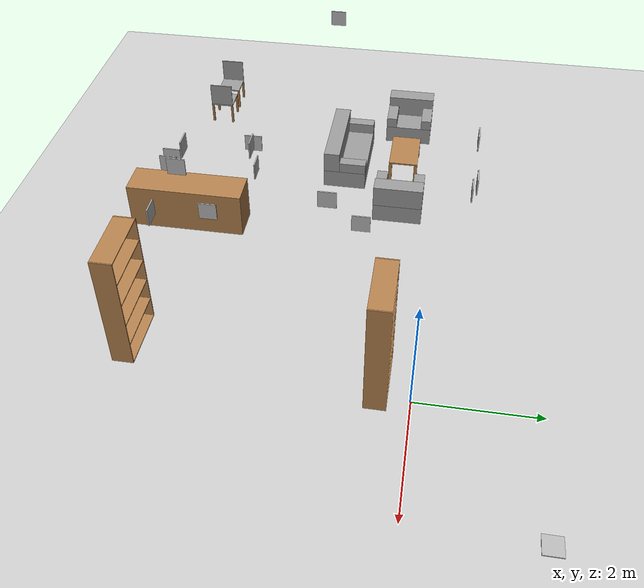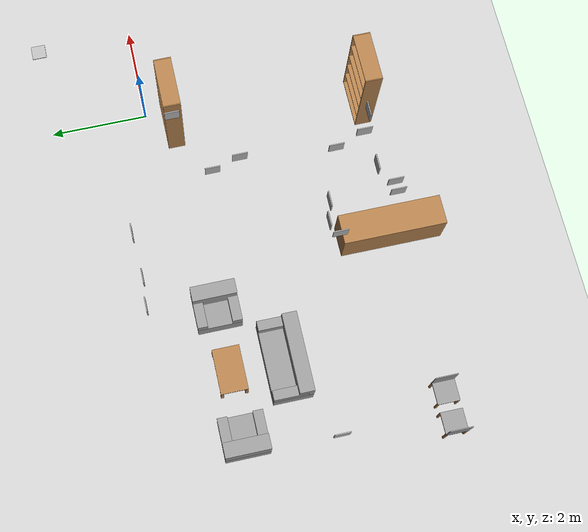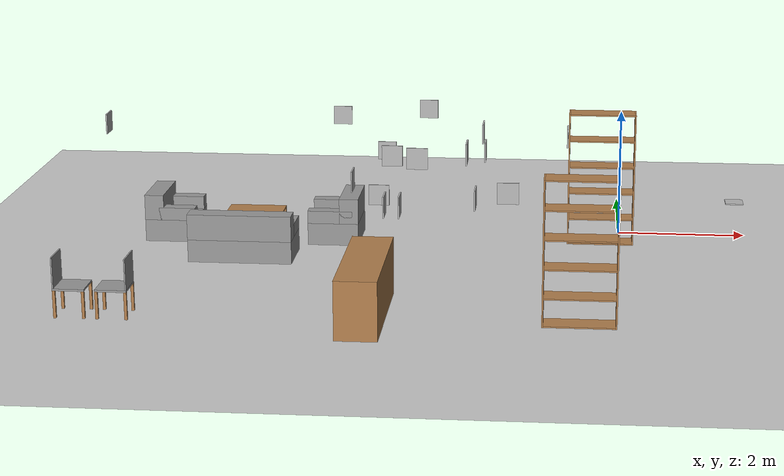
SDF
<sdf version="1.4">
 <world name="GrannyAnnie">
  <model name="ground_plane">
   <static>1</static>
   <link name="link">
    <collision name="collision">
     <geometry><plane><normal>0 0 1</normal><size>100 100</size></plane></geometry>
     <surface><friction><ode><mu>100</mu><mu2>50</mu2></ode></friction></surface>
    </collision>
    <visual name="visual">
     <cast_shadows>0</cast_shadows>
     <geometry><plane><normal>0 0 1</normal><size>100 100</size></plane></geometry>
     <material>
      <script><uri>file://media/materials/scripts/gazebo.material</uri><name>Gazebo/Grey</name></script>
     </material>
    </visual>
    <velocity_decay><linear>0</linear><angular>0</angular></velocity_decay>
   </link>
  </model>
  <model name="tag_0">
   <pose>-3.817000 0.700000 1.120000 1.5708 -1.5708 0</pose>
   <static>true</static>
   <link name="link">
    <collision name="collision">
     <geometry><box><size>0.300000 0.3000000 0.020000</size></box></geometry>
    </collision>
    <visual name="visual">
     <geometry><box><size>0.300000 0.3000000 0.020000</size></box></geometry>
     <material>
      <script><uri>file://tags_material/scripts/tags.material</uri><name>Tag36_11_00000</name></script>
     </material>
    </visual>
   </link>
   <static>0</static>
  </model>
  <model name="tag_2">
   <pose>-3.304000 -4.474000 1.650000 0 -1.5708 0</pose>
   <static>true</static>
   <link name="link">
    <collision name="collision">
     <geometry><box><size>0.300000 0.3000000 0.020000</size></box></geometry>
    </collision>
    <visual name="visual">
     <geometry><box><size>0.300000 0.3000000 0.020000</size></box></geometry>
     <material>
      <script><uri>file://tags_material/scripts/tags.material</uri><name>Tag36_11_00002</name></script>
     </material>
    </visual>
   </link>
   <static>0</static>
  </model>
  <model name="tag_3">
   <pose>-2.103000 -1.589000 2.006000 0 -1.5708 0</pose>
   <static>true</static>
   <link name="link">
    <collision name="collision">
     <geometry><box><size>0.300000 0.3000000 0.020000</size></box></geometry>
    </collision>
    <visual name="visual">
     <geometry><box><size>0.300000 0.3000000 0.020000</size></box></geometry>
     <material>
      <script><uri>file://tags_material/scripts/tags.material</uri><name>Tag36_11_00003</name></script>
     </material>
    </visual>
   </link>
   <static>0</static>
  </model>
  <model name="tag_4">
   <pose>-4.549000 0.727000 1.700000 1.5708 -1.5708 0</pose>
   <static>true</static>
   <link name="link">
    <collision name="collision">
     <geometry><box><size>0.300000 0.3000000 0.020000</size></box></geometry>
    </collision>
    <visual name="visual">
     <geometry><box><size>0.300000 0.3000000 0.020000</size></box></geometry>
     <material>
      <script><uri>file://tags_material/scripts/tags.material</uri><name>Tag36_11_00004</name></script>
     </material>
    </visual>
   </link>
   <static>0</static>
  </model>
  <model name="tag_5">
   <pose>-0.839 -0.497 1.700000 0 -1.5708 0</pose>
   <static>true</static>
   <link name="link">
    <collision name="collision">
     <geometry><box><size>0.300000 0.3000000 0.020000</size></box></geometry>
    </collision>
    <visual name="visual">
     <geometry><box><size>0.300000 0.3000000 0.020000</size></box></geometry>
     <material>
      <script><uri>file://tags_material/scripts/tags.material</uri><name>Tag36_11_00005</name></script>
     </material>
    </visual>
   </link>
   <static>0</static>
  </model>
  <model name="tag_6">
   <pose>-3.535000 -3.062500 1.400000 -1.5708 -1.5708 0</pose>
   <static>true</static>
   <link name="link">
    <collision name="collision">
     <geometry><box><size>0.300000 0.3000000 0.020000</size></box></geometry>
    </collision>
    <visual name="visual">
     <geometry><box><size>0.300000 0.3000000 0.020000</size></box></geometry>
     <material>
      <script><uri>file://tags_material/scripts/tags.material</uri><name>Tag36_11_00006</name></script>
     </material>
    </visual>
   </link>
   <static>0</static>
  </model>
  <model name="tag_7">
   <pose>-2.101000 -1.051000 1.5870000 0 -1.5708 0</pose>
   <static>true</static>
   <link name="link">
    <collision name="collision">
     <geometry><box><size>0.300000 0.3000000 0.020000</size></box></geometry>
    </collision>
    <visual name="visual">
     <geometry><box><size>0.300000 0.3000000 0.020000</size></box></geometry>
     <material>
      <script><uri>file://tags_material/scripts/tags.material</uri><name>Tag36_11_00007</name></script>
     </material>
    </visual>
   </link>
   <static>0</static>
  </model>
  <model name="tag_10">
   <pose>-1.614000 -4.29500 1.800000 1.5708 -1.5708 0</pose>
   <static>true</static>
   <link name="link">
    <collision name="collision">
     <geometry><box><size>0.300000 0.3000000 0.020000</size></box></geometry>
    </collision>
    <visual name="visual">
     <geometry><box><size>0.300000 0.3000000 0.020000</size></box></geometry>
     <material>
      <script><uri>file://tags_material/scripts/tags.material</uri><name>Tag36_11_00010</name></script>
     </material>
    </visual>
   </link>
   <static>0</static>
  </model>
  <model name="tag_11">
   <pose>-3.338000 -3.071000 1.990000 -1.5708 -1.5708 0</pose>
   <static>true</static>
   <link name="link">
    <collision name="collision">
     <geometry><box><size>0.300000 0.3000000 0.020000</size></box></geometry>
    </collision>
    <visual name="visual">
     <geometry><box><size>0.300000 0.3000000 0.020000</size></box></geometry>
     <material>
      <script><uri>file://tags_material/scripts/tags.material</uri><name>Tag36_11_00011</name></script>
     </material>
    </visual>
   </link>
   <static>0</static>
  </model>
  <model name="tag_12">
   <pose>-3.128000 0.720000 1.830000 1.5708 -1.5708 0</pose>
   <static>true</static>
   <link name="link">
    <collision name="collision">
     <geometry><box><size>0.300000 0.3000000 0.020000</size></box></geometry>
    </collision>
    <visual name="visual">
     <geometry><box><size>0.300000 0.3000000 0.020000</size></box></geometry>
     <material>
      <script><uri>file://tags_material/scripts/tags.material</uri><name>Tag36_11_00012</name></script>
     </material>
    </visual>
   </link>
   <static>0</static>
  </model>
  <model name="tag_13">
   <pose>-2.110000 -3.543000 1.510000 0 -1.5708 0</pose>
   <static>true</static>
   <link name="link">
    <collision name="collision">
     <geometry><box><size>0.0200000 0.300000 0.3000000</size></box></geometry>
    </collision>
    <visual name="visual">
     <geometry><box><size>0.300000 0.3000000 0.020000</size></box></geometry>
     <material>
      <script><uri>file://tags_material/scripts/tags.material</uri><name>Tag36_11_00013</name></script>
     </material>
    </visual>
   </link>
   <static>0</static>
  </model>
  <model name="tag_14">
   <pose>-2.88400 -4.091000 2.215000 -1.5708 -1.5708 0</pose>
   <static>true</static>
   <link name="link">
    <collision name="collision">
     <geometry><box><size>0.3000000 0.020000 0.3000000</size></box></geometry>
    </collision>
    <visual name="visual">
     <geometry><box><size>0.300000 0.3000000 0.020000</size></box></geometry>
     <material>
      <script><uri>file://tags_material/scripts/tags.material</uri><name>Tag36_11_00014</name></script>
     </material>
    </visual>
   </link>
   <static>0</static>
  </model>
  <model name="tag_15">
   <pose>-7.694000 -2.223000 2.208000 3.1416 -1.5708 0</pose>
   <static>true</static>
   <link name="link">
    <collision name="collision">
     <geometry><box><size>0.0200000 0.300000 0.3000000</size></box></geometry>
    </collision>
    <visual name="visual">
     <geometry><box><size>0.300000 0.3000000 0.020000</size></box></geometry>
     <material>
      <script><uri>file://tags_material/scripts/tags.material</uri><name>Tag36_11_00015</name></script>
     </material>
    </visual>
   </link>
   <static>0</static>
  </model>
  <model name="tag_16">
   <pose>-3.094000 -4.474000 1.650000 3.1416 -1.5708 0</pose>
   <static>true</static>
   <link name="link">
    <collision name="collision">
     <geometry><box><size>0.300000 0.3000000 0.020000</size></box></geometry>
    </collision>
    <visual name="visual">
     <geometry><box><size>0.300000 0.3000000 0.020000</size></box></geometry>
     <material>
      <script><uri>file://tags_material/scripts/tags.material</uri><name>Tag36_11_00016</name></script>
     </material>
    </visual>
   </link>
   <static>0</static>
  </model>
  <model name="tag_17">
   <pose>-3.902000 -3.178000 1.650000 0 -1.5708 0</pose>
   <static>true</static>
   <link name="link">
    <collision name="collision">
     <geometry><box><size>0.300000 0.3000000 0.020000</size></box></geometry>
    </collision>
    <visual name="visual">
     <geometry><box><size>0.300000 0.3000000 0.020000</size></box></geometry>
     <material>
      <script><uri>file://tags_material/scripts/tags.material</uri><name>Tag36_11_00017</name></script>
     </material>
    </visual>
   </link>
   <static>0</static>
  </model>
  <model name="tag_21">
   <pose>-2.201 -4.003 2.293 0 -1.5708 0</pose>
   <static>true</static>
   <link name="link">
    <collision name="collision">
     <geometry><box><size>0.300000 0.3000000 0.020000</size></box></geometry>
    </collision>
    <visual name="visual">
     <geometry><box><size>0.300000 0.3000000 0.020000</size></box></geometry>
     <material>
      <script><uri>file://tags_material/scripts/tags.material</uri><name>Tag36_11_00021</name></script>
     </material>
    </visual>
   </link>
   <static>0</static>
  </model>
  <model name="tag_23">
   <pose>2 2 0 0 0 0</pose>
   <static>true</static>
   <link name="link">
    <collision name="collision">
     <geometry><box><size>0.300000 0.3000000 0.020000</size></box></geometry>
    </collision>
    <visual name="visual">
     <geometry><box><size>0.300000 0.3000000 0.020000</size></box></geometry>
     <material>
      <script><uri>file://tags_material/scripts/tags.material</uri><name>Tag36_11_00023</name></script>
     </material>
    </visual>
   </link>
   <static>0</static>
  </model>
  <model name="tag_24">
   <pose>2 2 0 0 0 0</pose>
   <static>true</static>
   <link name="link">
    <collision name="collision">
     <geometry><box><size>0.300000 0.3000000 0.020000</size></box></geometry>
    </collision>
    <visual name="visual">
     <geometry><box><size>0.300000 0.3000000 0.020000</size></box></geometry>
     <material>
      <script><uri>file://tags_material/scripts/tags.material</uri><name>Tag36_11_00024</name></script>
     </material>
    </visual>
   </link>
   <static>0</static>
  </model>
  <model name="tag_25">
   <pose>2 2 0 0 0 0</pose>
   <static>true</static>
   <link name="link">
    <collision name="collision">
     <geometry><box><size>0.300000 0.3000000 0.020000</size></box></geometry>
    </collision>
    <visual name="visual">
     <geometry><box><size>0.300000 0.3000000 0.020000</size></box></geometry>
     <material>
      <script><uri>file://tags_material/scripts/tags.material</uri><name>Tag36_11_00025</name></script>
     </material>
    </visual>
   </link>
   <static>0</static>
  </model>
  <model name="tag_26">
   <pose>2 2 0 0 0 0</pose>
   <static>true</static>
   <link name="link">
    <collision name="collision">
     <geometry><box><size>0.300000 0.3000000 0.020000</size></box></geometry>
    </collision>
    <visual name="visual">
     <geometry><box><size>0.300000 0.3000000 0.020000</size></box></geometry>
     <material>
      <script><uri>file://tags_material/scripts/tags.material</uri><name>Tag36_11_00026</name></script>
     </material>
    </visual>
   </link>
   <static>0</static>
  </model>
  <model name="tag_27">
   <pose>2 2 0 0 0 0</pose>
   <static>true</static>
   <link name="link">
    <collision name="collision">
     <geometry><box><size>0.300000 0.3000000 0.020000</size></box></geometry>
    </collision>
    <visual name="visual">
     <geometry><box><size>0.300000 0.3000000 0.020000</size></box></geometry>
     <material>
      <script><uri>file://tags_material/scripts/tags.material</uri><name>Tag36_11_00027</name></script>
     </material>
    </visual>
   </link>
   <static>0</static>
  </model>
  <model name="tag_28">
   <pose>2 2 0 0 0 0</pose>
   <static>true</static>
   <link name="link">
    <collision name="collision">
     <geometry><box><size>0.300000 0.3000000 0.020000</size></box></geometry>
    </collision>
    <visual name="visual">
     <geometry><box><size>0.300000 0.3000000 0.020000</size></box></geometry>
     <material>
      <script><uri>file://tags_material/scripts/tags.material</uri><name>Tag36_11_00028</name></script>
     </material>
    </visual>
   </link>
   <static>0</static>
  </model>
  <model name="tag_29">
   <pose>2 2 0 0 0 0</pose>
   <static>true</static>
   <link name="link">
    <collision name="collision">
     <geometry><box><size>0.300000 0.3000000 0.020000</size></box></geometry>
    </collision>
    <visual name="visual">
     <geometry><box><size>0.300000 0.3000000 0.020000</size></box></geometry>
     <material>
      <script><uri>file://tags_material/scripts/tags.material</uri><name>Tag36_11_00029</name></script>
     </material>
    </visual>
   </link>
   <static>0</static>
  </model>
  <model name="tag_30">
   <pose>2 2 0 0 0 0</pose>
   <static>true</static>
   <link name="link">
    <collision name="collision">
     <geometry><box><size>0.300000 0.3000000 0.020000</size></box></geometry>
    </collision>
    <visual name="visual">
     <geometry><box><size>0.300000 0.3000000 0.020000</size></box></geometry>
     <material>
      <script><uri>file://tags_material/scripts/tags.material</uri><name>Tag36_11_00030</name></script>
     </material>
    </visual>
   </link>
   <static>0</static>
  </model>
  <model name="tag_31">
   <pose>2 2 0 0 0 0</pose>
   <static>true</static>
   <link name="link">
    <collision name="collision">
     <geometry><box><size>0.300000 0.3000000 0.020000</size></box></geometry>
    </collision>
    <visual name="visual">
     <geometry><box><size>0.300000 0.3000000 0.020000</size></box></geometry>
     <material>
      <script><uri>file://tags_material/scripts/tags.material</uri><name>Tag36_11_00031</name></script>
     </material>
    </visual>
   </link>
   <static>0</static>
  </model>
  <model name="silla_2">
   <link name="silla_link">
    <inertial>
     <pose>0.0215 0 0.353 0 -0 0</pose>
     <mass>2</mass>
     <inertia>
      <ixx>0.674432</ixx>
      <ixy>0</ixy>
      <ixz>-0.012986</ixz>
      <iyy>0.682753</iyy>
      <iyz>0</iyz>
      <izz>0.675561</izz>
     </inertia>
    </inertial>
    <collision name="silla_link_collision">
     <pose>0 0 0.415 0 -0 0</pose>
     <geometry><box><size>0.45 0.45 0.03</size></box></geometry>
     <surface><friction><ode><mu>1</mu><mu2>1</mu2></ode></friction></surface>
    </collision>
    <collision name="silla_link_collision_pata_1_link">
     <pose>0.205 0.205 0.2 0 -0 0</pose>
     <geometry><box><size>0.04 0.04 0.4</size></box></geometry>
     <surface><friction><ode><mu>1</mu><mu2>1</mu2></ode></friction></surface>
     <surface><friction><ode><mu>1</mu><mu2>1</mu2></ode></friction></surface>
    </collision>
    <collision name="silla_link_collision_pata_2_link">
     <pose>0.205 -0.205 0.2 0 -0 0</pose>
     <geometry><box><size>0.04 0.04 0.4</size></box></geometry>
     <surface><friction><ode><mu>1</mu><mu2>1</mu2></ode></friction></surface>
     <surface><friction><ode><mu>1</mu><mu2>1</mu2></ode></friction></surface>
    </collision>
    <collision name="silla_link_collision_pata_3_link">
     <pose>-0.205 -0.205 0.2 0 -0 0</pose>
     <geometry><box><size>0.04 0.04 0.4</size></box></geometry>
     <surface><friction><ode><mu>1</mu><mu2>1</mu2></ode></friction></surface>
     <surface><friction><ode><mu>1</mu><mu2>1</mu2></ode></friction></surface>
    </collision>
    <collision name="silla_link_collision_pata_4_link">
     <pose>-0.205 0.205 0.2 0 -0 0</pose>
     <geometry><box><size>0.04 0.04 0.4</size></box></geometry>
     <surface><friction><ode><mu>1</mu><mu2>1</mu2></ode></friction></surface>
     <surface><friction><ode><mu>1</mu><mu2>1</mu2></ode></friction></surface>
    </collision>
    <collision name="silla_link_collision_respaldo_link">
     <pose>0.215 0 0.655 0 -0 0</pose>
     <geometry><box><size>0.02 0.45 0.45</size></box></geometry>
     <surface><friction><ode><mu>1</mu><mu2>1</mu2></ode></friction></surface>
     <surface><friction><ode><mu>1</mu><mu2>1</mu2></ode></friction></surface>
    </collision>
    <visual name="silla_link_visual">
     <pose>0 0 0.415 0 -0 0</pose>
     <geometry><box><size>0.45 0.45 0.03</size></box></geometry>
     <material><script><name>Gazebo/Grey</name><uri>__default__</uri></script></material>
    </visual>
    <visual name="silla_link_visual_pata_1_link">
     <pose>0.205 0.205 0.2 0 -0 0</pose>
     <geometry><box><size>0.04 0.04 0.4</size></box></geometry>
     <material><script><name>Gazebo/Wood</name><uri>__default__</uri></script></material>
    </visual>
    <visual name="silla_link_visual_pata_2_link">
     <pose>0.205 -0.205 0.2 0 -0 0</pose>
     <geometry><box><size>0.04 0.04 0.4</size></box></geometry>
     <material><script><name>Gazebo/Wood</name><uri>__default__</uri></script></material>
    </visual>
    <visual name="silla_link_visual_pata_3_link">
     <pose>-0.205 -0.205 0.2 0 -0 0</pose>
     <geometry><box><size>0.04 0.04 0.4</size></box></geometry>
     <material><script><name>Gazebo/Wood</name><uri>__default__</uri></script></material>
    </visual>
    <visual name="silla_link_visual_pata_4_link">
     <pose>-0.205 0.205 0.2 0 -0 0</pose>
     <geometry><box><size>0.04 0.04 0.4</size></box></geometry>
     <material><script><name>Gazebo/Wood</name><uri>__default__</uri></script></material>
    </visual>
    <visual name="silla_link_visual_respaldo_link">
     <pose>0.215 0 0.655 0 -0 0</pose>
     <geometry><box><size>0.02 0.45 0.45</size></box></geometry>
     <material><script><name>Gazebo/Grey</name><uri>__default__</uri></script></material>
    </visual>
    <velocity_decay><linear>0</linear><angular>0</angular></velocity_decay>
    <velocity_decay><linear>0</linear><angular>0</angular></velocity_decay>
    <velocity_decay><linear>0</linear><angular>0</angular></velocity_decay>
    <velocity_decay><linear>0</linear><angular>0</angular></velocity_decay>
    <velocity_decay><linear>0</linear><angular>0</angular></velocity_decay>
    <velocity_decay><linear>0</linear><angular>0</angular></velocity_decay>
    <self_collide>1</self_collide>
   </link>
   <pose>-7.1 -4.6 0 0 -0 0</pose>
   <static>0</static>
  </model>
  <model name="silla_4">
   <link name="silla_link">
    <inertial>
     <pose>0.0215 0 0.353 0 -0 0</pose>
     <mass>2</mass>
     <inertia>
      <ixx>0.674432</ixx>
      <ixy>0</ixy>
      <ixz>-0.012986</ixz>
      <iyy>0.682753</iyy>
      <iyz>0</iyz>
      <izz>0.675561</izz>
     </inertia>
    </inertial>
    <collision name="silla_link_collision">
     <pose>0 0 0.415 0 -0 0</pose>
     <geometry><box><size>0.45 0.45 0.03</size></box></geometry>
     <surface><friction><ode><mu>1</mu><mu2>1</mu2></ode></friction></surface>
    </collision>
    <collision name="silla_link_collision_pata_1_link">
     <pose>0.205 0.205 0.2 0 -0 0</pose>
     <geometry><box><size>0.04 0.04 0.4</size></box></geometry>
     <surface><friction><ode><mu>1</mu><mu2>1</mu2></ode></friction></surface>
     <surface><friction><ode><mu>1</mu><mu2>1</mu2></ode></friction></surface>
    </collision>
    <collision name="silla_link_collision_pata_2_link">
     <pose>0.205 -0.205 0.2 0 -0 0</pose>
     <geometry><box><size>0.04 0.04 0.4</size></box></geometry>
     <surface><friction><ode><mu>1</mu><mu2>1</mu2></ode></friction></surface>
     <surface><friction><ode><mu>1</mu><mu2>1</mu2></ode></friction></surface>
    </collision>
    <collision name="silla_link_collision_pata_3_link">
     <pose>-0.205 -0.205 0.2 0 -0 0</pose>
     <geometry><box><size>0.04 0.04 0.4</size></box></geometry>
     <surface><friction><ode><mu>1</mu><mu2>1</mu2></ode></friction></surface>
     <surface><friction><ode><mu>1</mu><mu2>1</mu2></ode></friction></surface>
    </collision>
    <collision name="silla_link_collision_pata_4_link">
     <pose>-0.205 0.205 0.2 0 -0 0</pose>
     <geometry><box><size>0.04 0.04 0.4</size></box></geometry>
     <surface><friction><ode><mu>1</mu><mu2>1</mu2></ode></friction></surface>
     <surface><friction><ode><mu>1</mu><mu2>1</mu2></ode></friction></surface>
    </collision>
    <collision name="silla_link_collision_respaldo_link">
     <pose>0.215 0 0.655 0 -0 0</pose>
     <geometry><box><size>0.02 0.45 0.45</size></box></geometry>
     <surface><friction><ode><mu>1</mu><mu2>1</mu2></ode></friction></surface>
     <surface><friction><ode><mu>1</mu><mu2>1</mu2></ode></friction></surface>
    </collision>
    <visual name="silla_link_visual">
     <pose>0 0 0.415 0 -0 0</pose>
     <geometry><box><size>0.45 0.45 0.03</size></box></geometry>
     <material><script><name>Gazebo/Grey</name><uri>__default__</uri></script></material>
    </visual>
    <visual name="silla_link_visual_pata_1_link">
     <pose>0.205 0.205 0.2 0 -0 0</pose>
     <geometry><box><size>0.04 0.04 0.4</size></box></geometry>
     <material><script><name>Gazebo/Wood</name><uri>__default__</uri></script></material>
    </visual>
    <visual name="silla_link_visual_pata_2_link">
     <pose>0.205 -0.205 0.2 0 -0 0</pose>
     <geometry><box><size>0.04 0.04 0.4</size></box></geometry>
     <material><script><name>Gazebo/Wood</name><uri>__default__</uri></script></material>
    </visual>
    <visual name="silla_link_visual_pata_3_link">
     <pose>-0.205 -0.205 0.2 0 -0 0</pose>
     <geometry><box><size>0.04 0.04 0.4</size></box></geometry>
     <material><script><name>Gazebo/Wood</name><uri>__default__</uri></script></material>
    </visual>
    <visual name="silla_link_visual_pata_4_link">
     <pose>-0.205 0.205 0.2 0 -0 0</pose>
     <geometry><box><size>0.04 0.04 0.4</size></box></geometry>
     <material><script><name>Gazebo/Wood</name><uri>__default__</uri></script></material>
    </visual>
    <visual name="silla_link_visual_respaldo_link">
     <pose>0.215 0 0.655 0 -0 0</pose>
     <geometry><box><size>0.02 0.45 0.45</size></box></geometry>
     <material><script><name>Gazebo/Grey</name><uri>__default__</uri></script></material>
    </visual>
    <velocity_decay><linear>0</linear><angular>0</angular></velocity_decay>
    <velocity_decay><linear>0</linear><angular>0</angular></velocity_decay>
    <velocity_decay><linear>0</linear><angular>0</angular></velocity_decay>
    <velocity_decay><linear>0</linear><angular>0</angular></velocity_decay>
    <velocity_decay><linear>0</linear><angular>0</angular></velocity_decay>
    <velocity_decay><linear>0</linear><angular>0</angular></velocity_decay>
    <self_collide>1</self_collide>
   </link>
   <pose>-7.7 -4.6 0 0 -0 3.14</pose>
   <static>0</static>
  </model>
  <model name="mesa_salon">
   <link name="mesa_link">
    <inertial>
     <pose>1.38778e-17 3.46945e-18 0.3075 0 -0 0</pose>
     <mass>4</mass>
     <inertia>
      <ixx>0.666275</ixx>
      <ixy>1.92593e-34</ixy>
      <ixz>1.70697e-17</ixz>
      <iyy>0.899025</iyy>
      <iyz>4.26742e-18</iyz>
      <izz>0.97285</izz>
     </inertia>
    </inertial>
    <collision name="mesa_link_collision">
     <pose>0 0 0.415 0 -0 0</pose>
     <geometry><box><size>0.9 0.55 0.03</size></box></geometry>
     <surface><friction><ode><mu>1</mu><mu2>1</mu2></ode></friction></surface>
    </collision>
    <collision name="mesa_link_collision_pata_1_link">
     <pose>0.42 0.245 0.2 0 -0 0</pose>
     <geometry><box><size>0.06 0.06 0.4</size></box></geometry>
     <surface><friction><ode><mu>1</mu><mu2>1</mu2></ode></friction></surface>
     <surface><friction><ode><mu>1</mu><mu2>1</mu2></ode></friction></surface>
    </collision>
    <collision name="mesa_link_collision_pata_2_link">
     <pose>0.42 -0.245 0.2 0 -0 0</pose>
     <geometry><box><size>0.06 0.06 0.4</size></box></geometry>
     <surface><friction><ode><mu>1</mu><mu2>1</mu2></ode></friction></surface>
     <surface><friction><ode><mu>1</mu><mu2>1</mu2></ode></friction></surface>
    </collision>
    <collision name="mesa_link_collision_pata_3_link">
     <pose>-0.42 -0.245 0.2 0 -0 0</pose>
     <geometry><box><size>0.06 0.06 0.4</size></box></geometry>
     <surface><friction><ode><mu>1</mu><mu2>1</mu2></ode></friction></surface>
     <surface><friction><ode><mu>1</mu><mu2>1</mu2></ode></friction></surface>
    </collision>
    <collision name="mesa_link_collision_pata_4_link">
     <pose>-0.42 0.245 0.2 0 -0 0</pose>
     <geometry><box><size>0.06 0.06 0.4</size></box></geometry>
     <surface><friction><ode><mu>1</mu><mu2>1</mu2></ode></friction></surface>
     <surface><friction><ode><mu>1</mu><mu2>1</mu2></ode></friction></surface>
    </collision>
    <visual name="mesa_link_visual">
     <pose>0 0 0.415 0 -0 0</pose>
     <geometry><box><size>0.9 0.55 0.03</size></box></geometry>
     <material><script><name>Gazebo/Wood</name><uri>__default__</uri></script></material>
    </visual>
    <visual name="mesa_link_visual_pata_1_link">
     <pose>0.42 0.245 0.2 0 -0 0</pose>
     <geometry><box><size>0.06 0.06 0.4</size></box></geometry>
     <material><script><name>Gazebo/Wood</name><uri>__default__</uri></script></material>
    </visual>
    <visual name="mesa_link_visual_pata_2_link">
     <pose>0.42 -0.245 0.2 0 -0 0</pose>
     <geometry><box><size>0.06 0.06 0.4</size></box></geometry>
     <material><script><name>Gazebo/Wood</name><uri>__default__</uri></script></material>
    </visual>
    <visual name="mesa_link_visual_pata_3_link">
     <pose>-0.42 -0.245 0.2 0 -0 0</pose>
     <geometry><box><size>0.06 0.06 0.4</size></box></geometry>
     <material><script><name>Gazebo/Wood</name><uri>__default__</uri></script></material>
    </visual>
    <visual name="mesa_link_visual_pata_4_link">
     <pose>-0.42 0.245 0.2 0 -0 0</pose>
     <geometry><box><size>0.06 0.06 0.4</size></box></geometry>
     <material><script><name>Gazebo/Wood</name><uri>__default__</uri></script></material>
    </visual>
    <velocity_decay><linear>0</linear><angular>0</angular></velocity_decay>
    <velocity_decay><linear>0</linear><angular>0</angular></velocity_decay>
    <velocity_decay><linear>0</linear><angular>0</angular></velocity_decay>
    <velocity_decay><linear>0</linear><angular>0</angular></velocity_decay>
    <velocity_decay><linear>0</linear><angular>0</angular></velocity_decay>
    <self_collide>1</self_collide>
   </link>
   <pose>-5.8 -0.6 0 0 -0 0</pose>
   <static>0</static>
  </model>
  <model name="sofa_x2_salon">
   <link name="sofa_link">
    <inertial>
     <pose>0 0.0115385 0.257692 0 -0 0</pose>
     <mass>13</mass>
     <inertia>
      <ixx>0.7625</ixx>
      <ixy>0</ixy>
      <ixz>0</ixz>
      <iyy>1.67673</iyy>
      <iyz>-0.0463462</iyz>
      <izz>1.44577</izz>
     </inertia>
    </inertial>
    <collision name="sofa_link_collision">
     <pose>0 0 0.175 0 -0 0</pose>
     <geometry><box><size>1.6 0.8 0.35</size></box></geometry>
     <surface><friction><ode><mu>1</mu><mu2>1</mu2></ode></friction></surface>
    </collision>
    <collision name="sofa_link_collision_brazo_1_link">
     <pose>0.7 -0.05 0.45 0 -0 0</pose>
     <geometry><box><size>0.2 0.7 0.2</size></box></geometry>
     <surface><friction><ode><mu>1</mu><mu2>1</mu2></ode></friction></surface>
     <surface><friction><ode><mu>1</mu><mu2>1</mu2></ode></friction></surface>
    </collision>
    <collision name="sofa_link_collision_brazo_2_link">
     <pose>-0.7 -0.05 0.45 0 -0 0</pose>
     <geometry><box><size>0.2 0.7 0.2</size></box></geometry>
     <surface><friction><ode><mu>1</mu><mu2>1</mu2></ode></friction></surface>
     <surface><friction><ode><mu>1</mu><mu2>1</mu2></ode></friction></surface>
    </collision>
    <collision name="sofa_link_collision_respaldo_link">
     <pose>0 0.25 0.55 0 -0 0</pose>
     <geometry><box><size>1.6 0.3 0.4</size></box></geometry>
     <surface><friction><ode><mu>1</mu><mu2>1</mu2></ode></friction></surface>
     <surface><friction><ode><mu>1</mu><mu2>1</mu2></ode></friction></surface>
    </collision>
    <visual name="sofa_link_visual">
     <pose>0 0 0.175 0 -0 0</pose>
     <geometry><box><size>1.6 0.8 0.35</size></box></geometry>
     <material><script><name>Gazebo/Grey</name><uri>__default__</uri></script></material>
    </visual>
    <visual name="sofa_link_visual_brazo_1_link">
     <pose>0.7 -0.05 0.45 0 -0 0</pose>
     <geometry><box><size>0.2 0.7 0.2</size></box></geometry>
     <material><script><name>Gazebo/Grey</name><uri>__default__</uri></script></material>
    </visual>
    <visual name="sofa_link_visual_brazo_2_link">
     <pose>-0.7 -0.05 0.45 0 -0 0</pose>
     <geometry><box><size>0.2 0.7 0.2</size></box></geometry>
     <material><script><name>Gazebo/Grey</name><uri>__default__</uri></script></material>
    </visual>
    <visual name="sofa_link_visual_respaldo_link">
     <pose>0 0.25 0.55 0 -0 0</pose>
     <geometry><box><size>1.6 0.3 0.4</size></box></geometry>
     <material><script><name>Gazebo/Grey</name><uri>__default__</uri></script></material>
    </visual>
    <velocity_decay><linear>0</linear><angular>0</angular></velocity_decay>
    <velocity_decay><linear>0</linear><angular>0</angular></velocity_decay>
    <velocity_decay><linear>0</linear><angular>0</angular></velocity_decay>
    <velocity_decay><linear>0</linear><angular>0</angular></velocity_decay>
    <self_collide>1</self_collide>
   </link>
   <pose>-5.8 -1.7 0 0 -0 3.14</pose>
   <static>0</static>
  </model>
  <model name="sofa_x1_1_salon">
   <link name="sofa_link">
    <inertial>
     <pose>0 0.01875 0.309375 0 -0 0</pose>
     <mass>8</mass>
     <inertia>
      <ixx>0.705859</ixx>
      <ixy>0</ixy>
      <ixz>0</ixz>
      <iyy>0.886172</iyy>
      <iyz>-0.0385938</iyz>
      <izz>0.709687</izz>
     </inertia>
    </inertial>
    <collision name="sofa_link_collision">
     <pose>0 0 0.175 0 -0 0</pose>
     <geometry><box><size>0.9 0.8 0.35</size></box></geometry>
     <surface><friction><ode><mu>1</mu><mu2>1</mu2></ode></friction></surface>
    </collision>
    <collision name="sofa_link_collision_brazo_1_link">
     <pose>0.35 -0.05 0.45 0 -0 0</pose>
     <geometry><box><size>0.2 0.7 0.2</size></box></geometry>
     <surface><friction><ode><mu>1</mu><mu2>1</mu2></ode></friction></surface>
     <surface><friction><ode><mu>1</mu><mu2>1</mu2></ode></friction></surface>
    </collision>
    <collision name="sofa_link_collision_brazo_2_link">
     <pose>-0.35 -0.05 0.45 0 -0 0</pose>
     <geometry><box><size>0.2 0.7 0.2</size></box></geometry>
     <surface><friction><ode><mu>1</mu><mu2>1</mu2></ode></friction></surface>
     <surface><friction><ode><mu>1</mu><mu2>1</mu2></ode></friction></surface>
    </collision>
    <collision name="sofa_link_collision_respaldo_link">
     <pose>0 0.25 0.55 0 -0 0</pose>
     <geometry><box><size>0.9 0.3 0.4</size></box></geometry>
     <surface><friction><ode><mu>1</mu><mu2>1</mu2></ode></friction></surface>
     <surface><friction><ode><mu>1</mu><mu2>1</mu2></ode></friction></surface>
    </collision>
    <visual name="sofa_link_visual">
     <pose>0 0 0.175 0 -0 0</pose>
     <geometry><box><size>0.9 0.8 0.35</size></box></geometry>
     <material><script><name>Gazebo/Grey</name><uri>__default__</uri></script></material>
    </visual>
    <visual name="sofa_link_visual_brazo_1_link">
     <pose>0.35 -0.05 0.45 0 -0 0</pose>
     <geometry><box><size>0.2 0.7 0.2</size></box></geometry>
     <material><script><name>Gazebo/Grey</name><uri>__default__</uri></script></material>
    </visual>
    <visual name="sofa_link_visual_brazo_2_link">
     <pose>-0.35 -0.05 0.45 0 -0 0</pose>
     <geometry><box><size>0.2 0.7 0.2</size></box></geometry>
     <material><script><name>Gazebo/Grey</name><uri>__default__</uri></script></material>
    </visual>
    <visual name="sofa_link_visual_respaldo_link">
     <pose>0 0.25 0.55 0 -0 0</pose>
     <geometry><box><size>0.9 0.3 0.4</size></box></geometry>
     <material><script><name>Gazebo/Grey</name><uri>__default__</uri></script></material>
    </visual>
    <velocity_decay><linear>0</linear><angular>0</angular></velocity_decay>
    <velocity_decay><linear>0</linear><angular>0</angular></velocity_decay>
    <velocity_decay><linear>0</linear><angular>0</angular></velocity_decay>
    <velocity_decay><linear>0</linear><angular>0</angular></velocity_decay>
    <self_collide>1</self_collide>
   </link>
   <pose>-4.5 -0.6 0 0 0 -1.57</pose>
   <static>0</static>
  </model>
  <model name="sofa_x1_2_salon">
   <link name="sofa_link">
    <inertial>
     <pose>0 0.01875 0.309375 0 -0 0</pose>
     <mass>8</mass>
     <inertia>
      <ixx>0.705859</ixx>
      <ixy>0</ixy>
      <ixz>0</ixz>
      <iyy>0.886172</iyy>
      <iyz>-0.0385938</iyz>
      <izz>0.709687</izz>
     </inertia>
    </inertial>
    <collision name="sofa_link_collision">
     <pose>0 0 0.175 0 -0 0</pose>
     <geometry><box><size>0.9 0.8 0.35</size></box></geometry>
     <surface><friction><ode><mu>1</mu><mu2>1</mu2></ode></friction></surface>
    </collision>
    <collision name="sofa_link_collision_brazo_1_link">
     <pose>0.35 -0.05 0.45 0 -0 0</pose>
     <geometry><box><size>0.2 0.7 0.2</size></box></geometry>
     <surface><friction><ode><mu>1</mu><mu2>1</mu2></ode></friction></surface>
     <surface><friction><ode><mu>1</mu><mu2>1</mu2></ode></friction></surface>
    </collision>
    <collision name="sofa_link_collision_brazo_2_link">
     <pose>-0.35 -0.05 0.45 0 -0 0</pose>
     <geometry><box><size>0.2 0.7 0.2</size></box></geometry>
     <surface><friction><ode><mu>1</mu><mu2>1</mu2></ode></friction></surface>
     <surface><friction><ode><mu>1</mu><mu2>1</mu2></ode></friction></surface>
    </collision>
    <collision name="sofa_link_collision_respaldo_link">
     <pose>0 0.25 0.55 0 -0 0</pose>
     <geometry><box><size>0.9 0.3 0.4</size></box></geometry>
     <surface><friction><ode><mu>1</mu><mu2>1</mu2></ode></friction></surface>
     <surface><friction><ode><mu>1</mu><mu2>1</mu2></ode></friction></surface>
    </collision>
    <visual name="sofa_link_visual">
     <pose>0 0 0.175 0 -0 0</pose>
     <geometry><box><size>0.9 0.8 0.35</size></box></geometry>
     <material><script><name>Gazebo/Grey</name><uri>__default__</uri></script></material>
    </visual>
    <visual name="sofa_link_visual_brazo_1_link">
     <pose>0.35 -0.05 0.45 0 -0 0</pose>
     <geometry><box><size>0.2 0.7 0.2</size></box></geometry>
     <material><script><name>Gazebo/Grey</name><uri>__default__</uri></script></material>
    </visual>
    <visual name="sofa_link_visual_brazo_2_link">
     <pose>-0.35 -0.05 0.45 0 -0 0</pose>
     <geometry><box><size>0.2 0.7 0.2</size></box></geometry>
     <material><script><name>Gazebo/Grey</name><uri>__default__</uri></script></material>
    </visual>
    <visual name="sofa_link_visual_respaldo_link">
     <pose>0 0.25 0.55 0 -0 0</pose>
     <geometry><box><size>0.9 0.3 0.4</size></box></geometry>
     <material><script><name>Gazebo/Grey</name><uri>__default__</uri></script></material>
    </visual>
    <velocity_decay><linear>0</linear><angular>0</angular></velocity_decay>
    <velocity_decay><linear>0</linear><angular>0</angular></velocity_decay>
    <velocity_decay><linear>0</linear><angular>0</angular></velocity_decay>
    <velocity_decay><linear>0</linear><angular>0</angular></velocity_decay>
    <self_collide>1</self_collide>
   </link>
   <pose>-7.1 -0.6 0 0 -0 1.57</pose>
   <static>0</static>
  </model>
  <model name="encimera">
   <link name="encimera_link">
    <inertial>
     <pose>0 0 0.425 0 -0 0</pose>
     <mass>50</mass>
     <inertia><ixx>5</ixx><ixy>0</ixy><ixz>0</ixz><iyy>5</iyy><iyz>0</iyz><izz>5</izz></inertia>
    </inertial>
    <collision name="encimera_link_collision">
     <pose>0 0 0.425 0 -0 0</pose>
     <geometry><box><size>2.1 0.6 0.85</size></box></geometry>
     <surface><friction><ode><mu>1</mu><mu2>1</mu2></ode></friction></surface>
    </collision>
    <visual name="encimera_link_visual">
     <pose>0 0 0.425 0 -0 0</pose>
     <geometry><box><size>2.1 0.6 0.85</size></box></geometry>
     <material><script><name>Gazebo/Wood</name><uri>__default__</uri></script></material>
    </visual>
    <velocity_decay><linear>0</linear><angular>0</angular></velocity_decay>
    <self_collide>1</self_collide>
   </link>
   <pose>-3.6 -4.39 0 0 -0 1.57</pose>
   <static>0</static>
  </model>
  <model name="estanteria_1">
   <link name="estanteria_link">
    <inertial>
     <pose>0 0 1.046 0 -0 0</pose>
     <mass>10</mass>
     <inertia><ixx>3.12544</ixx><ixy>0</ixy><ixz>0</ixz><iyy>4.16584</iyy><iyz>0</iyz><izz>1.1204</izz></inertia>
    </inertial>
    <collision name="estanteria_link_collision">
     <pose>0 0 0.01 0 -0 0</pose>
     <geometry><box><size>1 0.35 0.02</size></box></geometry>
     <surface><friction><ode><mu>1</mu><mu2>1</mu2></ode></friction></surface>
    </collision>
    <collision name="estanteria_link_collision_basal_1_link">
     <pose>0 0 0.41 0 -0 0</pose>
     <geometry><box><size>1 0.35 0.02</size></box></geometry>
     <surface><friction><ode><mu>1</mu><mu2>1</mu2></ode></friction></surface>
     <surface><friction><ode><mu>1</mu><mu2>1</mu2></ode></friction></surface>
    </collision>
    <collision name="estanteria_link_collision_basal_2_link">
     <pose>0 0 0.83 0 -0 0</pose>
     <geometry><box><size>1 0.35 0.02</size></box></geometry>
     <surface><friction><ode><mu>1</mu><mu2>1</mu2></ode></friction></surface>
     <surface><friction><ode><mu>1</mu><mu2>1</mu2></ode></friction></surface>
    </collision>
    <collision name="estanteria_link_collision_basal_3_link">
     <pose>0 0 1.25 0 -0 0</pose>
     <geometry><box><size>1 0.35 0.02</size></box></geometry>
     <surface><friction><ode><mu>1</mu><mu2>1</mu2></ode></friction></surface>
     <surface><friction><ode><mu>1</mu><mu2>1</mu2></ode></friction></surface>
    </collision>
    <collision name="estanteria_link_collision_basal_4_link">
     <pose>0 0 1.67 0 -0 0</pose>
     <geometry><box><size>1 0.35 0.02</size></box></geometry>
     <surface><friction><ode><mu>1</mu><mu2>1</mu2></ode></friction></surface>
     <surface><friction><ode><mu>1</mu><mu2>1</mu2></ode></friction></surface>
    </collision>
    <collision name="estanteria_link_collision_basal_5_link">
     <pose>0 0 2.09 0 -0 0</pose>
     <geometry><box><size>1 0.35 0.02</size></box></geometry>
     <surface><friction><ode><mu>1</mu><mu2>1</mu2></ode></friction></surface>
     <surface><friction><ode><mu>1</mu><mu2>1</mu2></ode></friction></surface>
    </collision>
    <collision name="estanteria_link_collision_lateral_1_link">
     <pose>0.51 0 1.05 0 -0 0</pose>
     <geometry><box><size>0.02 0.35 2.1</size></box></geometry>
     <surface><friction><ode><mu>1</mu><mu2>1</mu2></ode></friction></surface>
     <surface><friction><ode><mu>1</mu><mu2>1</mu2></ode></friction></surface>
    </collision>
    <collision name="estanteria_link_collision_lateral_2_link">
     <pose>-0.51 0 1.05 0 -0 0</pose>
     <geometry><box><size>0.02 0.35 2.1</size></box></geometry>
     <surface><friction><ode><mu>1</mu><mu2>1</mu2></ode></friction></surface>
     <surface><friction><ode><mu>1</mu><mu2>1</mu2></ode></friction></surface>
    </collision>
    <visual name="estanteria_link_visual">
     <pose>0 0 0.01 0 -0 0</pose>
     <geometry><box><size>1 0.35 0.02</size></box></geometry>
     <material><script><name>Gazebo/Wood</name><uri>__default__</uri></script></material>
    </visual>
    <visual name="estanteria_link_visual_basal_1_link">
     <pose>0 0 0.41 0 -0 0</pose>
     <geometry><box><size>1 0.35 0.02</size></box></geometry>
     <material><script><name>Gazebo/Wood</name><uri>__default__</uri></script></material>
    </visual>
    <visual name="estanteria_link_visual_basal_2_link">
     <pose>0 0 0.83 0 -0 0</pose>
     <geometry><box><size>1 0.35 0.02</size></box></geometry>
     <material><script><name>Gazebo/Wood</name><uri>__default__</uri></script></material>
    </visual>
    <visual name="estanteria_link_visual_basal_3_link">
     <pose>0 0 1.25 0 -0 0</pose>
     <geometry><box><size>1 0.35 0.02</size></box></geometry>
     <material><script><name>Gazebo/Wood</name><uri>__default__</uri></script></material>
    </visual>
    <visual name="estanteria_link_visual_basal_4_link">
     <pose>0 0 1.67 0 -0 0</pose>
     <geometry><box><size>1 0.35 0.02</size></box></geometry>
     <material><script><name>Gazebo/Wood</name><uri>__default__</uri></script></material>
    </visual>
    <visual name="estanteria_link_visual_basal_5_link">
     <pose>0 0 2.09 0 -0 0</pose>
     <geometry><box><size>1 0.35 0.02</size></box></geometry>
     <material><script><name>Gazebo/Wood</name><uri>__default__</uri></script></material>
    </visual>
    <visual name="estanteria_link_visual_lateral_1_link">
     <pose>0.51 0 1.05 0 -0 0</pose>
     <geometry><box><size>0.02 0.35 2.1</size></box></geometry>
     <material><script><name>Gazebo/Wood</name><uri>__default__</uri></script></material>
    </visual>
    <visual name="estanteria_link_visual_lateral_2_link">
     <pose>-0.51 0 1.05 0 -0 0</pose>
     <geometry><box><size>0.02 0.35 2.1</size></box></geometry>
     <material><script><name>Gazebo/Wood</name><uri>__default__</uri></script></material>
    </visual>
    <velocity_decay><linear>0</linear><angular>0</angular></velocity_decay>
    <velocity_decay><linear>0</linear><angular>0</angular></velocity_decay>
    <velocity_decay><linear>0</linear><angular>0</angular></velocity_decay>
    <velocity_decay><linear>0</linear><angular>0</angular></velocity_decay>
    <velocity_decay><linear>0</linear><angular>0</angular></velocity_decay>
    <velocity_decay><linear>0</linear><angular>0</angular></velocity_decay>
    <velocity_decay><linear>0</linear><angular>0</angular></velocity_decay>
    <velocity_decay><linear>0</linear><angular>0</angular></velocity_decay>
    <self_collide>1</self_collide>
   </link>
   <pose>-0.3 -0.52 0 0 -0 0</pose>
   <static>0</static>
  </model>
  <model name="estanteria_2">
   <link name="estanteria_link">
    <inertial>
     <pose>0 0 1.046 0 -0 0</pose>
     <mass>10</mass>
     <inertia><ixx>3.12544</ixx><ixy>0</ixy><ixz>0</ixz><iyy>4.16584</iyy><iyz>0</iyz><izz>1.1204</izz></inertia>
    </inertial>
    <collision name="estanteria_link_collision">
     <pose>0 0 0.01 0 -0 0</pose>
     <geometry><box><size>1 0.35 0.02</size></box></geometry>
     <surface><friction><ode><mu>1</mu><mu2>1</mu2></ode></friction></surface>
    </collision>
    <collision name="estanteria_link_collision_basal_1_link">
     <pose>0 0 0.41 0 -0 0</pose>
     <geometry><box><size>1 0.35 0.02</size></box></geometry>
     <surface><friction><ode><mu>1</mu><mu2>1</mu2></ode></friction></surface>
     <surface><friction><ode><mu>1</mu><mu2>1</mu2></ode></friction></surface>
    </collision>
    <collision name="estanteria_link_collision_basal_2_link">
     <pose>0 0 0.83 0 -0 0</pose>
     <geometry><box><size>1 0.35 0.02</size></box></geometry>
     <surface><friction><ode><mu>1</mu><mu2>1</mu2></ode></friction></surface>
     <surface><friction><ode><mu>1</mu><mu2>1</mu2></ode></friction></surface>
    </collision>
    <collision name="estanteria_link_collision_basal_3_link">
     <pose>0 0 1.25 0 -0 0</pose>
     <geometry><box><size>1 0.35 0.02</size></box></geometry>
     <surface><friction><ode><mu>1</mu><mu2>1</mu2></ode></friction></surface>
     <surface><friction><ode><mu>1</mu><mu2>1</mu2></ode></friction></surface>
    </collision>
    <collision name="estanteria_link_collision_basal_4_link">
     <pose>0 0 1.67 0 -0 0</pose>
     <geometry><box><size>1 0.35 0.02</size></box></geometry>
     <surface><friction><ode><mu>1</mu><mu2>1</mu2></ode></friction></surface>
     <surface><friction><ode><mu>1</mu><mu2>1</mu2></ode></friction></surface>
    </collision>
    <collision name="estanteria_link_collision_basal_5_link">
     <pose>0 0 2.09 0 -0 0</pose>
     <geometry><box><size>1 0.35 0.02</size></box></geometry>
     <surface><friction><ode><mu>1</mu><mu2>1</mu2></ode></friction></surface>
     <surface><friction><ode><mu>1</mu><mu2>1</mu2></ode></friction></surface>
    </collision>
    <collision name="estanteria_link_collision_lateral_1_link">
     <pose>0.51 0 1.05 0 -0 0</pose>
     <geometry><box><size>0.02 0.35 2.1</size></box></geometry>
     <surface><friction><ode><mu>1</mu><mu2>1</mu2></ode></friction></surface>
     <surface><friction><ode><mu>1</mu><mu2>1</mu2></ode></friction></surface>
    </collision>
    <collision name="estanteria_link_collision_lateral_2_link">
     <pose>-0.51 0 1.05 0 -0 0</pose>
     <geometry><box><size>0.02 0.35 2.1</size></box></geometry>
     <surface><friction><ode><mu>1</mu><mu2>1</mu2></ode></friction></surface>
     <surface><friction><ode><mu>1</mu><mu2>1</mu2></ode></friction></surface>
    </collision>
    <visual name="estanteria_link_visual">
     <pose>0 0 0.01 0 -0 0</pose>
     <geometry><box><size>1 0.35 0.02</size></box></geometry>
     <material><script><name>Gazebo/Wood</name><uri>__default__</uri></script></material>
    </visual>
    <visual name="estanteria_link_visual_basal_1_link">
     <pose>0 0 0.41 0 -0 0</pose>
     <geometry><box><size>1 0.35 0.02</size></box></geometry>
     <material><script><name>Gazebo/Wood</name><uri>__default__</uri></script></material>
    </visual>
    <visual name="estanteria_link_visual_basal_2_link">
     <pose>0 0 0.83 0 -0 0</pose>
     <geometry><box><size>1 0.35 0.02</size></box></geometry>
     <material><script><name>Gazebo/Wood</name><uri>__default__</uri></script></material>
    </visual>
    <visual name="estanteria_link_visual_basal_3_link">
     <pose>0 0 1.25 0 -0 0</pose>
     <geometry><box><size>1 0.35 0.02</size></box></geometry>
     <material><script><name>Gazebo/Wood</name><uri>__default__</uri></script></material>
    </visual>
    <visual name="estanteria_link_visual_basal_4_link">
     <pose>0 0 1.67 0 -0 0</pose>
     <geometry><box><size>1 0.35 0.02</size></box></geometry>
     <material><script><name>Gazebo/Wood</name><uri>__default__</uri></script></material>
    </visual>
    <visual name="estanteria_link_visual_basal_5_link">
     <pose>0 0 2.09 0 -0 0</pose>
     <geometry><box><size>1 0.35 0.02</size></box></geometry>
     <material><script><name>Gazebo/Wood</name><uri>__default__</uri></script></material>
    </visual>
    <visual name="estanteria_link_visual_lateral_1_link">
     <pose>0.51 0 1.05 0 -0 0</pose>
     <geometry><box><size>0.02 0.35 2.1</size></box></geometry>
     <material><script><name>Gazebo/Wood</name><uri>__default__</uri></script></material>
    </visual>
    <visual name="estanteria_link_visual_lateral_2_link">
     <pose>-0.51 0 1.05 0 -0 0</pose>
     <geometry><box><size>0.02 0.35 2.1</size></box></geometry>
     <material><script><name>Gazebo/Wood</name><uri>__default__</uri></script></material>
    </visual>
    <velocity_decay><linear>0</linear><angular>0</angular></velocity_decay>
    <velocity_decay><linear>0</linear><angular>0</angular></velocity_decay>
    <velocity_decay><linear>0</linear><angular>0</angular></velocity_decay>
    <velocity_decay><linear>0</linear><angular>0</angular></velocity_decay>
    <velocity_decay><linear>0</linear><angular>0</angular></velocity_decay>
    <velocity_decay><linear>0</linear><angular>0</angular></velocity_decay>
    <velocity_decay><linear>0</linear><angular>0</angular></velocity_decay>
    <velocity_decay><linear>0</linear><angular>0</angular></velocity_decay>
    <self_collide>1</self_collide>
   </link>
   <pose>-0.6 -4.5 0 0 -0 0</pose>
   <static>0</static>
  </model>
 </world>
</sdf>
